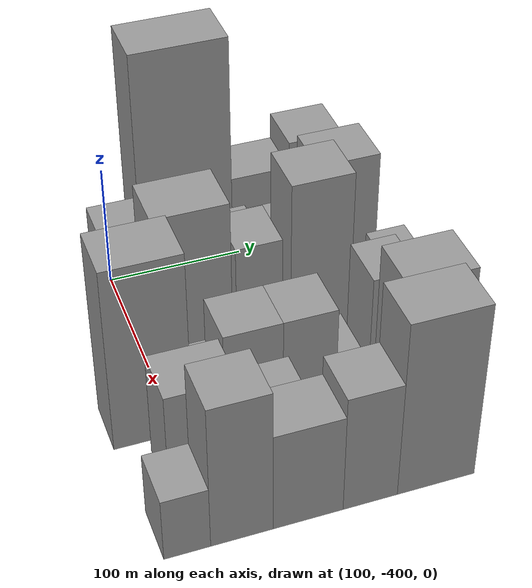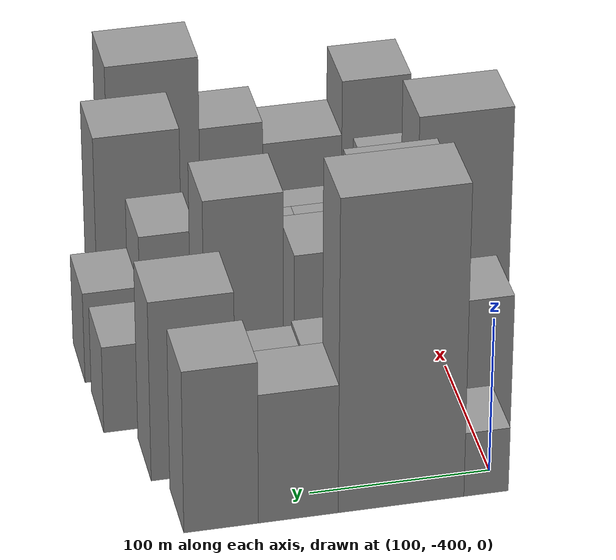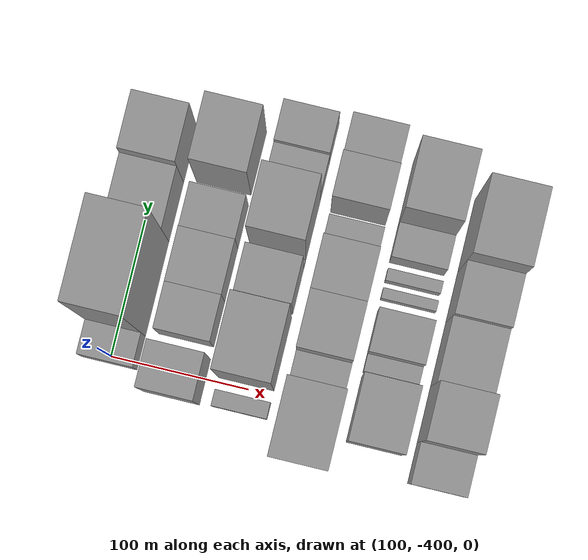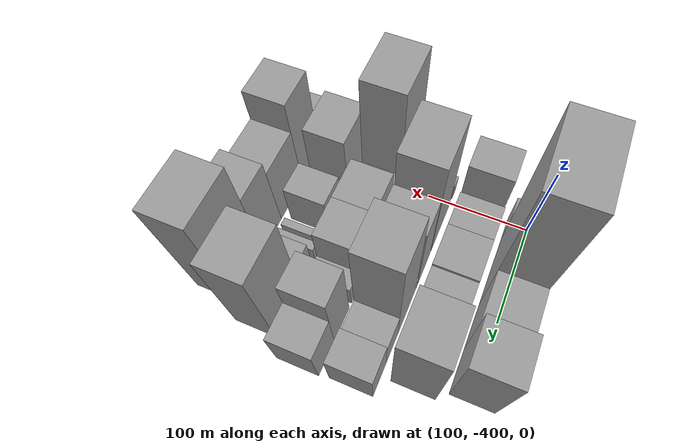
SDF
<sdf version="1.6">
 <world name="default">
  <model name="building_15">
   <static>1</static>
   <pose>100.0000 -392.8743 0 0.000000 0.000000 0.000000</pose>
   <link name="link">
    <pose>0 0 21.00 0 0 0</pose>
    <collision name="collision"><geometry><box><size>40.0000 24.7014 42.0000</size></box></geometry></collision>
    <visual name="visual">
     <cast_shadows>0</cast_shadows>
     <geometry><box><size>40.0000 24.7014 42.0000</size></box></geometry>
     <material>
      <script>
       <uri>model://grey_wall/materials/scripts</uri>
       <uri>model://grey_wall/materials/textures</uri>
       <name>vrc/grey_wall</name>
      </script>
     </material>
    </visual>
   </link>
  </model>
  <model name="building_16">
   <static>1</static>
   <pose>100.0000 -345.8023 0 0.000000 0.000000 0.000000</pose>
   <link name="link">
    <pose>0 0 100.50 0 0 0</pose>
    <collision name="collision"><geometry><box><size>40.0000 69.4425 201.0000</size></box></geometry></collision>
    <visual name="visual">
     <cast_shadows>0</cast_shadows>
     <geometry><box><size>40.0000 69.4425 201.0000</size></box></geometry>
     <material>
      <script>
       <uri>model://grey_wall/materials/scripts</uri>
       <uri>model://grey_wall/materials/textures</uri>
       <name>vrc/grey_wall</name>
      </script>
     </material>
    </visual>
   </link>
  </model>
  <model name="building_17">
   <static>1</static>
   <pose>100.0000 -289.2329 0 0.000000 0.000000 0.000000</pose>
   <link name="link">
    <pose>0 0 42.00 0 0 0</pose>
    <collision name="collision"><geometry><box><size>40.0000 43.6964 84.0000</size></box></geometry></collision>
    <visual name="visual">
     <cast_shadows>0</cast_shadows>
     <geometry><box><size>40.0000 43.6964 84.0000</size></box></geometry>
     <material>
      <script>
       <uri>model://grey_wall/materials/scripts</uri>
       <uri>model://grey_wall/materials/textures</uri>
       <name>vrc/grey_wall</name>
      </script>
     </material>
    </visual>
   </link>
  </model>
  <model name="building_18">
   <static>1</static>
   <pose>100.0000 -247.1147 0 0.000000 0.000000 0.000000</pose>
   <link name="link">
    <pose>0 0 52.50 0 0 0</pose>
    <collision name="collision"><geometry><box><size>40.0000 40.5399 105.0000</size></box></geometry></collision>
    <visual name="visual">
     <cast_shadows>0</cast_shadows>
     <geometry><box><size>40.0000 40.5399 105.0000</size></box></geometry>
     <material>
      <script>
       <uri>model://grey_wall/materials/scripts</uri>
       <uri>model://grey_wall/materials/textures</uri>
       <name>vrc/grey_wall</name>
      </script>
     </material>
    </visual>
   </link>
  </model>
  <model name="building_58">
   <static>1</static>
   <pose>149.0000 -402.2383 0 0.000000 0.000000 0.000000</pose>
   <link name="link">
    <pose>0 0 46.50 0 0 0</pose>
    <collision name="collision"><geometry><box><size>40.0000 33.3585 93.0000</size></box></geometry></collision>
    <visual name="visual">
     <cast_shadows>0</cast_shadows>
     <geometry><box><size>40.0000 33.3585 93.0000</size></box></geometry>
     <material>
      <script>
       <uri>model://grey_wall/materials/scripts</uri>
       <uri>model://grey_wall/materials/textures</uri>
       <name>vrc/grey_wall</name>
      </script>
     </material>
    </visual>
   </link>
  </model>
  <model name="building_59">
   <static>1</static>
   <pose>149.0000 -360.0440 0 0.000000 0.000000 0.000000</pose>
   <link name="link">
    <pose>0 0 33.00 0 0 0</pose>
    <collision name="collision"><geometry><box><size>40.0000 33.0301 66.0000</size></box></geometry></collision>
    <visual name="visual">
     <cast_shadows>0</cast_shadows>
     <geometry><box><size>40.0000 33.0301 66.0000</size></box></geometry>
     <material>
      <script>
       <uri>model://grey_wall/materials/scripts</uri>
       <uri>model://grey_wall/materials/textures</uri>
       <name>vrc/grey_wall</name>
      </script>
     </material>
    </visual>
   </link>
  </model>
  <model name="building_60">
   <static>1</static>
   <pose>149.0000 -323.9631 0 0.000000 0.000000 0.000000</pose>
   <link name="link">
    <pose>0 0 33.00 0 0 0</pose>
    <collision name="collision"><geometry><box><size>40.0000 39.1316 66.0000</size></box></geometry></collision>
    <visual name="visual">
     <cast_shadows>0</cast_shadows>
     <geometry><box><size>40.0000 39.1316 66.0000</size></box></geometry>
     <material>
      <script>
       <uri>model://grey_wall/materials/scripts</uri>
       <uri>model://grey_wall/materials/textures</uri>
       <name>vrc/grey_wall</name>
      </script>
     </material>
    </visual>
   </link>
  </model>
  <model name="building_61">
   <static>1</static>
   <pose>149.0000 -288.6069 0 0.000000 0.000000 0.000000</pose>
   <link name="link">
    <pose>0 0 31.50 0 0 0</pose>
    <collision name="collision"><geometry><box><size>40.0000 31.5810 63.0000</size></box></geometry></collision>
    <visual name="visual">
     <cast_shadows>0</cast_shadows>
     <geometry><box><size>40.0000 31.5810 63.0000</size></box></geometry>
     <material>
      <script>
       <uri>model://grey_wall/materials/scripts</uri>
       <uri>model://grey_wall/materials/textures</uri>
       <name>vrc/grey_wall</name>
      </script>
     </material>
    </visual>
   </link>
  </model>
  <model name="building_62">
   <static>1</static>
   <pose>149.0000 -241.5577 0 0.000000 0.000000 0.000000</pose>
   <link name="link">
    <pose>0 0 58.50 0 0 0</pose>
    <collision name="collision"><geometry><box><size>40.0000 46.5174 117.0000</size></box></geometry></collision>
    <visual name="visual">
     <cast_shadows>0</cast_shadows>
     <geometry><box><size>40.0000 46.5174 117.0000</size></box></geometry>
     <material>
      <script>
       <uri>model://grey_wall/materials/scripts</uri>
       <uri>model://grey_wall/materials/textures</uri>
       <name>vrc/grey_wall</name>
      </script>
     </material>
    </visual>
   </link>
  </model>
  <model name="building_102">
   <static>1</static>
   <pose>198.0000 -411.8034 0 0.000000 0.000000 0.000000</pose>
   <link name="link">
    <pose>0 0 12.00 0 0 0</pose>
    <collision name="collision"><geometry><box><size>40.0000 11.9186 24.0000</size></box></geometry></collision>
    <visual name="visual">
     <cast_shadows>0</cast_shadows>
     <geometry><box><size>40.0000 11.9186 24.0000</size></box></geometry>
     <material>
      <script>
       <uri>model://grey_wall/materials/scripts</uri>
       <uri>model://grey_wall/materials/textures</uri>
       <name>vrc/grey_wall</name>
      </script>
     </material>
    </visual>
   </link>
  </model>
  <model name="building_103">
   <static>1</static>
   <pose>198.0000 -370.4230 0 0.000000 0.000000 0.000000</pose>
   <link name="link">
    <pose>0 0 70.50 0 0 0</pose>
    <collision name="collision"><geometry><box><size>40.0000 52.8423 141.0000</size></box></geometry></collision>
    <visual name="visual">
     <cast_shadows>0</cast_shadows>
     <geometry><box><size>40.0000 52.8423 141.0000</size></box></geometry>
     <material>
      <script>
       <uri>model://grey_wall/materials/scripts</uri>
       <uri>model://grey_wall/materials/textures</uri>
       <name>vrc/grey_wall</name>
      </script>
     </material>
    </visual>
   </link>
  </model>
  <model name="building_104">
   <static>1</static>
   <pose>198.0000 -324.5464 0 0.000000 0.000000 0.000000</pose>
   <link name="link">
    <pose>0 0 51.00 0 0 0</pose>
    <collision name="collision"><geometry><box><size>40.0000 32.9109 102.0000</size></box></geometry></collision>
    <visual name="visual">
     <cast_shadows>0</cast_shadows>
     <geometry><box><size>40.0000 32.9109 102.0000</size></box></geometry>
     <material>
      <script>
       <uri>model://grey_wall/materials/scripts</uri>
       <uri>model://grey_wall/materials/textures</uri>
       <name>vrc/grey_wall</name>
      </script>
     </material>
    </visual>
   </link>
  </model>
  <model name="building_105">
   <static>1</static>
   <pose>198.0000 -305.0614 0 0.000000 0.000000 0.000000</pose>
   <link name="link">
    <pose>0 0 7.50 0 0 0</pose>
    <collision name="collision"><geometry><box><size>40.0000 6.0591 15.0000</size></box></geometry></collision>
    <visual name="visual">
     <cast_shadows>0</cast_shadows>
     <geometry><box><size>40.0000 6.0591 15.0000</size></box></geometry>
     <material>
      <script>
       <uri>model://grey_wall/materials/scripts</uri>
       <uri>model://grey_wall/materials/textures</uri>
       <name>vrc/grey_wall</name>
      </script>
     </material>
    </visual>
   </link>
  </model>
  <model name="building_106">
   <static>1</static>
   <pose>198.0000 -279.8752 0 0.000000 0.000000 0.000000</pose>
   <link name="link">
    <pose>0 0 72.00 0 0 0</pose>
    <collision name="collision"><geometry><box><size>40.0000 44.3132 144.0000</size></box></geometry></collision>
    <visual name="visual">
     <cast_shadows>0</cast_shadows>
     <geometry><box><size>40.0000 44.3132 144.0000</size></box></geometry>
     <material>
      <script>
       <uri>model://grey_wall/materials/scripts</uri>
       <uri>model://grey_wall/materials/textures</uri>
       <name>vrc/grey_wall</name>
      </script>
     </material>
    </visual>
   </link>
  </model>
  <model name="building_107">
   <static>1</static>
   <pose>198.0000 -244.0266 0 0.000000 0.000000 0.000000</pose>
   <link name="link">
    <pose>0 0 24.00 0 0 0</pose>
    <collision name="collision"><geometry><box><size>40.0000 27.3840 48.0000</size></box></geometry></collision>
    <visual name="visual">
     <cast_shadows>0</cast_shadows>
     <geometry><box><size>40.0000 27.3840 48.0000</size></box></geometry>
     <material>
      <script>
       <uri>model://grey_wall/materials/scripts</uri>
       <uri>model://grey_wall/materials/textures</uri>
       <name>vrc/grey_wall</name>
      </script>
     </material>
    </visual>
   </link>
  </model>
  <model name="building_108">
   <static>1</static>
   <pose>198.0000 -215.6127 0 0.000000 0.000000 0.000000</pose>
   <link name="link">
    <pose>0 0 28.50 0 0 0</pose>
    <collision name="collision"><geometry><box><size>40.0000 29.4438 57.0000</size></box></geometry></collision>
    <visual name="visual">
     <cast_shadows>0</cast_shadows>
     <geometry><box><size>40.0000 29.4438 57.0000</size></box></geometry>
     <material>
      <script>
       <uri>model://grey_wall/materials/scripts</uri>
       <uri>model://grey_wall/materials/textures</uri>
       <name>vrc/grey_wall</name>
      </script>
     </material>
    </visual>
   </link>
  </model>
  <model name="building_149">
   <static>1</static>
   <pose>247.0000 -415.8678 0 0.000000 0.000000 0.000000</pose>
   <link name="link">
    <pose>0 0 75.00 0 0 0</pose>
    <collision name="collision"><geometry><box><size>40.0000 53.8516 150.0000</size></box></geometry></collision>
    <visual name="visual">
     <cast_shadows>0</cast_shadows>
     <geometry><box><size>40.0000 53.8516 150.0000</size></box></geometry>
     <material>
      <script>
       <uri>model://grey_wall/materials/scripts</uri>
       <uri>model://grey_wall/materials/textures</uri>
       <name>vrc/grey_wall</name>
      </script>
     </material>
    </visual>
   </link>
  </model>
  <model name="building_150">
   <static>1</static>
   <pose>247.0000 -377.6943 0 0.000000 0.000000 0.000000</pose>
   <link name="link">
    <pose>0 0 19.50 0 0 0</pose>
    <collision name="collision"><geometry><box><size>40.0000 22.4955 39.0000</size></box></geometry></collision>
    <visual name="visual">
     <cast_shadows>0</cast_shadows>
     <geometry><box><size>40.0000 22.4955 39.0000</size></box></geometry>
     <material>
      <script>
       <uri>model://grey_wall/materials/scripts</uri>
       <uri>model://grey_wall/materials/textures</uri>
       <name>vrc/grey_wall</name>
      </script>
     </material>
    </visual>
   </link>
  </model>
  <model name="building_151">
   <static>1</static>
   <pose>247.0000 -345.8579 0 0.000000 0.000000 0.000000</pose>
   <link name="link">
    <pose>0 0 37.50 0 0 0</pose>
    <collision name="collision"><geometry><box><size>40.0000 41.1773 75.0000</size></box></geometry></collision>
    <visual name="visual">
     <cast_shadows>0</cast_shadows>
     <geometry><box><size>40.0000 41.1773 75.0000</size></box></geometry>
     <material>
      <script>
       <uri>model://grey_wall/materials/scripts</uri>
       <uri>model://grey_wall/materials/textures</uri>
       <name>vrc/grey_wall</name>
      </script>
     </material>
    </visual>
   </link>
  </model>
  <model name="building_152">
   <static>1</static>
   <pose>247.0000 -306.1244 0 0.000000 0.000000 0.000000</pose>
   <link name="link">
    <pose>0 0 37.50 0 0 0</pose>
    <collision name="collision"><geometry><box><size>40.0000 38.2896 75.0000</size></box></geometry></collision>
    <visual name="visual">
     <cast_shadows>0</cast_shadows>
     <geometry><box><size>40.0000 38.2896 75.0000</size></box></geometry>
     <material>
      <script>
       <uri>model://grey_wall/materials/scripts</uri>
       <uri>model://grey_wall/materials/textures</uri>
       <name>vrc/grey_wall</name>
      </script>
     </material>
    </visual>
   </link>
  </model>
  <model name="building_153">
   <static>1</static>
   <pose>247.0000 -277.6971 0 0.000000 0.000000 0.000000</pose>
   <link name="link">
    <pose>0 0 16.50 0 0 0</pose>
    <collision name="collision"><geometry><box><size>40.0000 18.5651 33.0000</size></box></geometry></collision>
    <visual name="visual">
     <cast_shadows>0</cast_shadows>
     <geometry><box><size>40.0000 18.5651 33.0000</size></box></geometry>
     <material>
      <script>
       <uri>model://grey_wall/materials/scripts</uri>
       <uri>model://grey_wall/materials/textures</uri>
       <name>vrc/grey_wall</name>
      </script>
     </material>
    </visual>
   </link>
  </model>
  <model name="building_154">
   <static>1</static>
   <pose>247.0000 -247.2154 0 0.000000 0.000000 0.000000</pose>
   <link name="link">
    <pose>0 0 46.50 0 0 0</pose>
    <collision name="collision"><geometry><box><size>40.0000 32.3981 93.0000</size></box></geometry></collision>
    <visual name="visual">
     <cast_shadows>0</cast_shadows>
     <geometry><box><size>40.0000 32.3981 93.0000</size></box></geometry>
     <material>
      <script>
       <uri>model://grey_wall/materials/scripts</uri>
       <uri>model://grey_wall/materials/textures</uri>
       <name>vrc/grey_wall</name>
      </script>
     </material>
    </visual>
   </link>
  </model>
  <model name="building_155">
   <static>1</static>
   <pose>247.0000 -214.9817 0 0.000000 0.000000 0.000000</pose>
   <link name="link">
    <pose>0 0 30.00 0 0 0</pose>
    <collision name="collision"><geometry><box><size>40.0000 32.0693 60.0000</size></box></geometry></collision>
    <visual name="visual">
     <cast_shadows>0</cast_shadows>
     <geometry><box><size>40.0000 32.0693 60.0000</size></box></geometry>
     <material>
      <script>
       <uri>model://grey_wall/materials/scripts</uri>
       <uri>model://grey_wall/materials/textures</uri>
       <name>vrc/grey_wall</name>
      </script>
     </material>
    </visual>
   </link>
  </model>
  <model name="building_196">
   <static>1</static>
   <pose>296.0000 -396.1432 0 0.000000 0.000000 0.000000</pose>
   <link name="link">
    <pose>0 0 42.00 0 0 0</pose>
    <collision name="collision"><geometry><box><size>40.0000 47.6077 84.0000</size></box></geometry></collision>
    <visual name="visual">
     <cast_shadows>0</cast_shadows>
     <geometry><box><size>40.0000 47.6077 84.0000</size></box></geometry>
     <material>
      <script>
       <uri>model://grey_wall/materials/scripts</uri>
       <uri>model://grey_wall/materials/textures</uri>
       <name>vrc/grey_wall</name>
      </script>
     </material>
    </visual>
   </link>
  </model>
  <model name="building_197">
   <static>1</static>
   <pose>296.0000 -362.9938 0 0.000000 0.000000 0.000000</pose>
   <link name="link">
    <pose>0 0 13.50 0 0 0</pose>
    <collision name="collision"><geometry><box><size>40.0000 12.6910 27.0000</size></box></geometry></collision>
    <visual name="visual">
     <cast_shadows>0</cast_shadows>
     <geometry><box><size>40.0000 12.6910 27.0000</size></box></geometry>
     <material>
      <script>
       <uri>model://grey_wall/materials/scripts</uri>
       <uri>model://grey_wall/materials/textures</uri>
       <name>vrc/grey_wall</name>
      </script>
     </material>
    </visual>
   </link>
  </model>
  <model name="building_198">
   <static>1</static>
   <pose>296.0000 -340.8847 0 0.000000 0.000000 0.000000</pose>
   <link name="link">
    <pose>0 0 27.00 0 0 0</pose>
    <collision name="collision"><geometry><box><size>40.0000 31.5272 54.0000</size></box></geometry></collision>
    <visual name="visual">
     <cast_shadows>0</cast_shadows>
     <geometry><box><size>40.0000 31.5272 54.0000</size></box></geometry>
     <material>
      <script>
       <uri>model://grey_wall/materials/scripts</uri>
       <uri>model://grey_wall/materials/textures</uri>
       <name>vrc/grey_wall</name>
      </script>
     </material>
    </visual>
   </link>
  </model>
  <model name="building_199">
   <static>1</static>
   <pose>296.0000 -312.2320 0 0.000000 0.000000 0.000000</pose>
   <link name="link">
    <pose>0 0 9.00 0 0 0</pose>
    <collision name="collision"><geometry><box><size>40.0000 7.7784 18.0000</size></box></geometry></collision>
    <visual name="visual">
     <cast_shadows>0</cast_shadows>
     <geometry><box><size>40.0000 7.7784 18.0000</size></box></geometry>
     <material>
      <script>
       <uri>model://grey_wall/materials/scripts</uri>
       <uri>model://grey_wall/materials/textures</uri>
       <name>vrc/grey_wall</name>
      </script>
     </material>
    </visual>
   </link>
  </model>
  <model name="building_200">
   <static>1</static>
   <pose>296.0000 -298.9350 0 0.000000 0.000000 0.000000</pose>
   <link name="link">
    <pose>0 0 10.50 0 0 0</pose>
    <collision name="collision"><geometry><box><size>40.0000 8.8156 21.0000</size></box></geometry></collision>
    <visual name="visual">
     <cast_shadows>0</cast_shadows>
     <geometry><box><size>40.0000 8.8156 21.0000</size></box></geometry>
     <material>
      <script>
       <uri>model://grey_wall/materials/scripts</uri>
       <uri>model://grey_wall/materials/textures</uri>
       <name>vrc/grey_wall</name>
      </script>
     </material>
    </visual>
   </link>
  </model>
  <model name="building_201">
   <static>1</static>
   <pose>296.0000 -276.1710 0 0.000000 0.000000 0.000000</pose>
   <link name="link">
    <pose>0 0 22.50 0 0 0</pose>
    <collision name="collision"><geometry><box><size>40.0000 24.7124 45.0000</size></box></geometry></collision>
    <visual name="visual">
     <cast_shadows>0</cast_shadows>
     <geometry><box><size>40.0000 24.7124 45.0000</size></box></geometry>
     <material>
      <script>
       <uri>model://grey_wall/materials/scripts</uri>
       <uri>model://grey_wall/materials/textures</uri>
       <name>vrc/grey_wall</name>
      </script>
     </material>
    </visual>
   </link>
  </model>
  <model name="building_202">
   <static>1</static>
   <pose>296.0000 -239.4069 0 0.000000 0.000000 0.000000</pose>
   <link name="link">
    <pose>0 0 64.50 0 0 0</pose>
    <collision name="collision"><geometry><box><size>40.0000 48.8159 129.0000</size></box></geometry></collision>
    <visual name="visual">
     <cast_shadows>0</cast_shadows>
     <geometry><box><size>40.0000 48.8159 129.0000</size></box></geometry>
     <material>
      <script>
       <uri>model://grey_wall/materials/scripts</uri>
       <uri>model://grey_wall/materials/textures</uri>
       <name>vrc/grey_wall</name>
      </script>
     </material>
    </visual>
   </link>
  </model>
  <model name="building_249">
   <static>1</static>
   <pose>345.0000 -423.0717 0 0.000000 0.000000 0.000000</pose>
   <link name="link">
    <pose>0 0 25.50 0 0 0</pose>
    <collision name="collision"><geometry><box><size>40.0000 29.8135 51.0000</size></box></geometry></collision>
    <visual name="visual">
     <cast_shadows>0</cast_shadows>
     <geometry><box><size>40.0000 29.8135 51.0000</size></box></geometry>
     <material>
      <script>
       <uri>model://grey_wall/materials/scripts</uri>
       <uri>model://grey_wall/materials/textures</uri>
       <name>vrc/grey_wall</name>
      </script>
     </material>
    </visual>
   </link>
  </model>
  <model name="building_250">
   <static>1</static>
   <pose>345.0000 -387.9513 0 0.000000 0.000000 0.000000</pose>
   <link name="link">
    <pose>0 0 58.50 0 0 0</pose>
    <collision name="collision"><geometry><box><size>40.0000 40.4273 117.0000</size></box></geometry></collision>
    <visual name="visual">
     <cast_shadows>0</cast_shadows>
     <geometry><box><size>40.0000 40.4273 117.0000</size></box></geometry>
     <material>
      <script>
       <uri>model://grey_wall/materials/scripts</uri>
       <uri>model://grey_wall/materials/textures</uri>
       <name>vrc/grey_wall</name>
      </script>
     </material>
    </visual>
   </link>
  </model>
  <model name="building_251">
   <static>1</static>
   <pose>345.0000 -344.4408 0 0.000000 0.000000 0.000000</pose>
   <link name="link">
    <pose>0 0 40.50 0 0 0</pose>
    <collision name="collision"><geometry><box><size>40.0000 46.5937 81.0000</size></box></geometry></collision>
    <visual name="visual">
     <cast_shadows>0</cast_shadows>
     <geometry><box><size>40.0000 46.5937 81.0000</size></box></geometry>
     <material>
      <script>
       <uri>model://grey_wall/materials/scripts</uri>
       <uri>model://grey_wall/materials/textures</uri>
       <name>vrc/grey_wall</name>
      </script>
     </material>
    </visual>
   </link>
  </model>
  <model name="building_252">
   <static>1</static>
   <pose>345.0000 -302.6857 0 0.000000 0.000000 0.000000</pose>
   <link name="link">
    <pose>0 0 48.00 0 0 0</pose>
    <collision name="collision"><geometry><box><size>40.0000 36.9164 96.0000</size></box></geometry></collision>
    <visual name="visual">
     <cast_shadows>0</cast_shadows>
     <geometry><box><size>40.0000 36.9164 96.0000</size></box></geometry>
     <material>
      <script>
       <uri>model://grey_wall/materials/scripts</uri>
       <uri>model://grey_wall/materials/textures</uri>
       <name>vrc/grey_wall</name>
      </script>
     </material>
    </visual>
   </link>
  </model>
  <model name="building_253">
   <static>1</static>
   <pose>345.0000 -257.4492 0 0.000000 0.000000 0.000000</pose>
   <link name="link">
    <pose>0 0 72.00 0 0 0</pose>
    <collision name="collision"><geometry><box><size>40.0000 53.5565 144.0000</size></box></geometry></collision>
    <visual name="visual">
     <cast_shadows>0</cast_shadows>
     <geometry><box><size>40.0000 53.5565 144.0000</size></box></geometry>
     <material>
      <script>
       <uri>model://grey_wall/materials/scripts</uri>
       <uri>model://grey_wall/materials/textures</uri>
       <name>vrc/grey_wall</name>
      </script>
     </material>
    </visual>
   </link>
  </model>
 </world>
</sdf>
